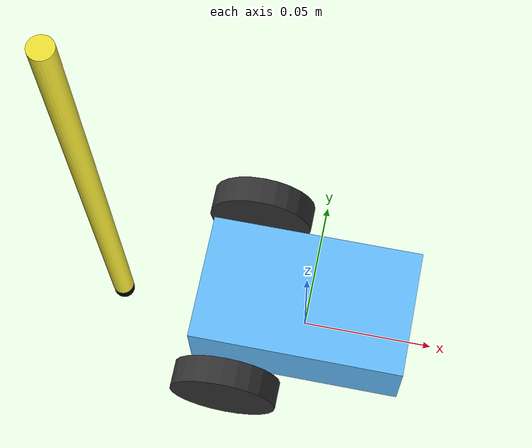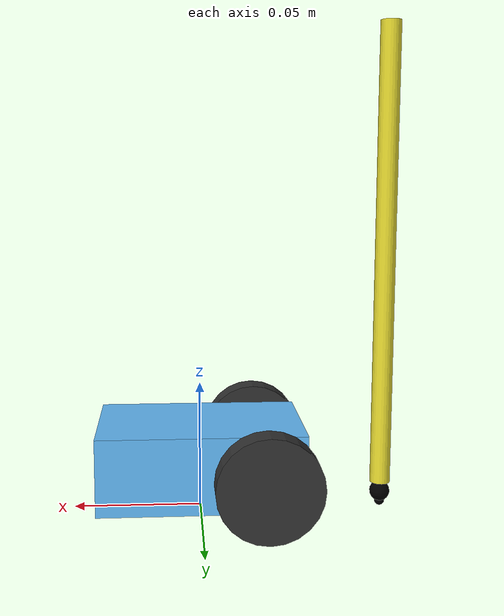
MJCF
<mujoco model="lego_car">

  <worldbody>
    <body name="chassis" pos="0 0 0.02">
      <freejoint name="root"/>
      <inertial pos="0 0 -0.013" mass="0.15" diaginertia="1.3e-5 3.0e-5 3.6e-5"/>
      <geom type="box" size="0.04 0.024 0.015" rgba=".4 .75 1.0 1"/>

      <body name="wheel_left" pos="-0.024 -0.036 0">
        <joint name="joint_left" type="hinge" axis="0 1 0" damping="0.005"/>
        <inertial pos="0 0 0" mass="0.02" diaginertia="2.2e-6 4.0e-6 2.2e-6"/>
        <geom type="cylinder" size="0.02 0.005" euler="90 0 0" rgba=".2 .2 .2 1"
              friction="1.5 0.005 0.0001" condim="6" priority="1"/>
      </body>

      <body name="wheel_right" pos="-0.024 0.036 0">
        <joint name="joint_right" type="hinge" axis="0 1 0" damping="0.005"/>
        <inertial pos="0 0 0" mass="0.02" diaginertia="2.2e-6 4.0e-6 2.2e-6"/>
        <geom type="cylinder" size="0.02 0.005" euler="90 0 0" rgba=".2 .2 .2 1"
              friction="1.5 0.005 0.0001" condim="6" priority="1"/>
      </body>

      <geom name="front_skid" type="sphere" size="0.008" pos="0.032 0 -0.012"
            rgba=".9 .9 .9 1" friction="0.1 0.005 0.0001" priority="1"/>

      <body name="pencil" pos="-0.073 0 0.170">
        <inertial pos="0 0 -0.091" mass="0.006" diaginertia="1.7e-5 1.7e-5 5e-8"/>
        <geom name="pencil_barrel" type="cylinder" size="0.004 0.091"
              pos="0 0 -0.091" rgba=".95 .9 .2 1"/>
        <geom name="pencil_tip" type="sphere" size="0.004"
              pos="0 0 -0.186" rgba="0 0 0 1"
              friction="0.05 0.001 0.0001" priority="1"/>
        <site name="pencil_trace" pos="0 0 -0.190" size="0.002" rgba="0 0 0 1"/>
      </body>
    </body>
  </worldbody>

  <actuator>
    <motor name="motor_left"  joint="joint_left"  gear="0.05"/>
    <motor name="motor_right" joint="joint_right" gear="0.05"/>
  </actuator>
</mujoco>
